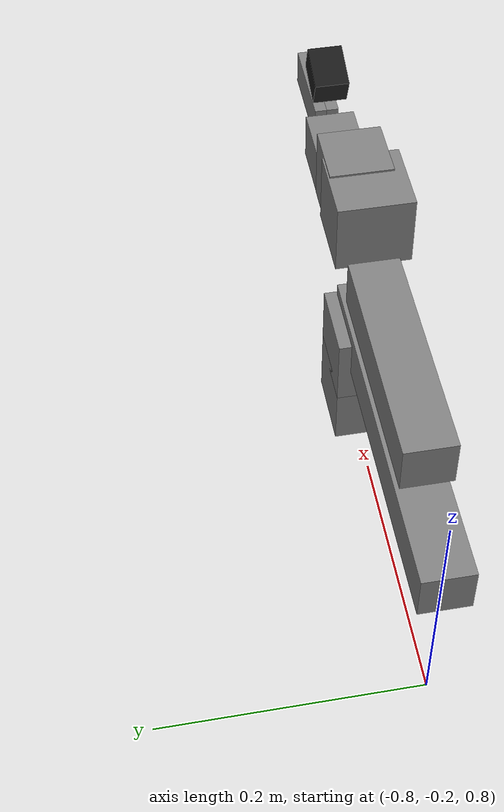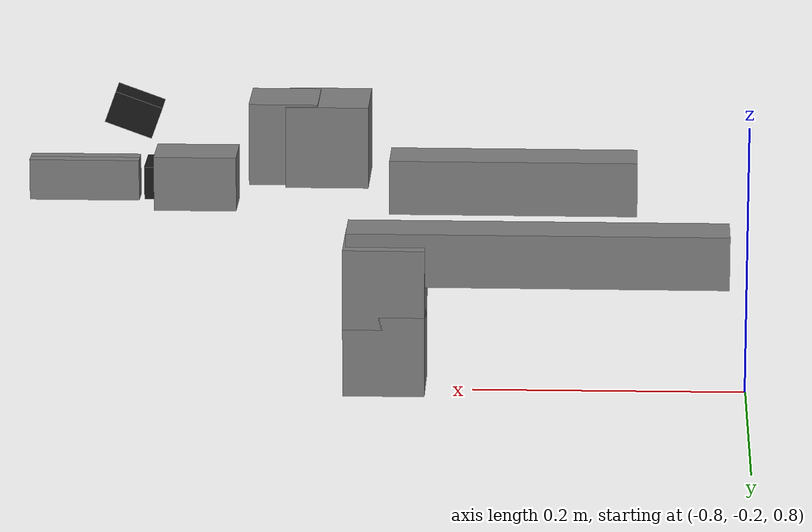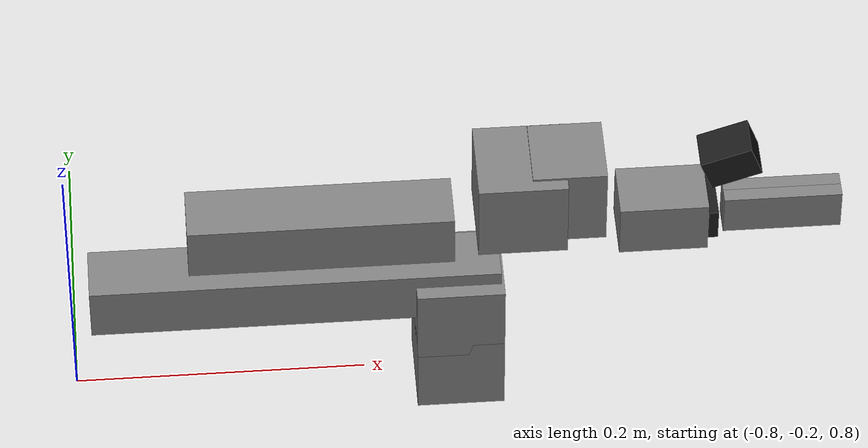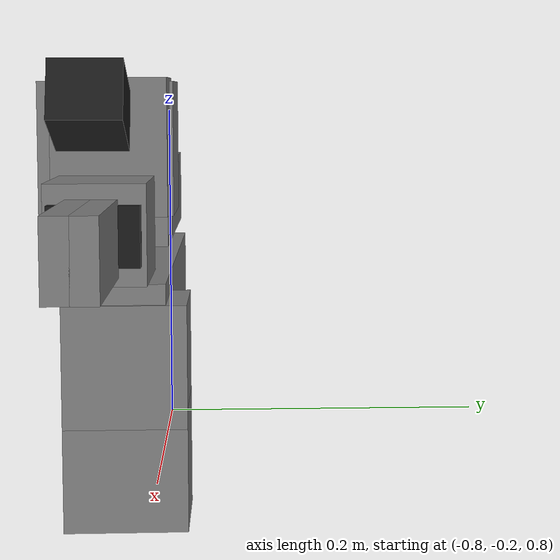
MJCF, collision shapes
<mujoco model="arx5_robot_alignment">
  <compiler angle="radian" autolimits="true" meshdir="../../source/uwlab_assets/uwlab_assets/robots/arx5/assets"/>

  <option timestep="0.008333333333333333" gravity="0 0 -9.81" integrator="implicitfast"/>

  <asset>
    <mesh name="base_link_mesh" file="meshes/base_link.obj"/>
    <mesh name="link1_mesh" file="meshes/link1.obj"/>
    <mesh name="link2_mesh" file="meshes/link2.obj"/>
    <mesh name="link3_mesh" file="meshes/link3.obj"/>
    <mesh name="link4_mesh" file="meshes/link4.obj"/>
    <mesh name="link5_mesh" file="meshes/link5.obj"/>
    <mesh name="link6_mesh" file="meshes/link6.obj"/>
    <mesh name="link7_mesh" file="meshes/link7.obj"/>
    <mesh name="link8_mesh" file="meshes/link8.obj"/>
    <material name="arx_black" rgba="0 0 0 1"/>
    <material name="arx_white" rgba="1 1 1 1"/>
    <material name="camera_mat" rgba="0.1 0.1 0.1 1"/>
    <material name="grasp_site_mat" rgba="0 0.8 1 0.7"/>
  </asset>

  <default>
    <joint damping="0.01" armature="0.01"/>
    <geom type="mesh" contype="1" conaffinity="1" friction="1 0.005 0.0001"/>
  </default>

  <worldbody>
    <!-- Root pose is the current Isaac deploy/data-collection robot base pose. -->
    <body name="arx5" pos="-0.535 -0.21 0.8" quat="1.0 0.0 0.0 0.0" gravcomp="1">
      <inertial pos="-3.0001e-05 3.0589e-05 0.027324" mass="0.43995" diaginertia="0.00017 0.00017 0.00016"/>
      <geom name="base_link_visual" type="mesh" mesh="base_link_mesh" material="arx_black" contype="0" conaffinity="0"/>
      <geom name="base_link_collision" type="box" pos="0.0 0.0 0.03" size="0.03 0.03 0.03" contype="0" conaffinity="0"/>

      <body name="link1" pos="0.0 0.0 0.0605" gravcomp="1">
        <joint name="joint1" type="hinge" axis="0.0 0.0 1.0" range="-10.0 10.0"/>
        <inertial pos="0.0054231 -0.0080289 0.017086" mass="0.066982" diaginertia="0.00008 0.00003 0.00008"/>
        <geom name="link1_visual" type="mesh" mesh="link1_mesh" material="arx_black" contype="0" conaffinity="0"/>
        <geom name="link1_collision" type="box" pos="0.0 0.0 0.02" size="0.03 0.03 0.03" contype="0" conaffinity="0"/>

        <body name="link2" pos="0.02 0.0 0.04" gravcomp="1">
          <joint name="joint2" type="hinge" axis="0.0 1.0 0.0" range="-10.0 10.0"/>
          <inertial pos="-0.13237 0.0020852 0.00010549" mass="1.0795" diaginertia="0.00051 0.01599 0.01605"/>
          <geom name="link2_visual" type="mesh" mesh="link2_mesh" material="arx_black" contype="0" conaffinity="0"/>
          <geom name="link2_collision" type="box" pos="-0.132 0.0 0.0" size="0.14 0.02 0.02" contype="0" conaffinity="0"/>

          <body name="link3" pos="-0.264 0.0 0.0" euler="3.1416 0 0" gravcomp="1">
            <joint name="joint3" type="hinge" axis="0.0 1.0 0.0" range="-10.0 10.0"/>
            <inertial pos="0.18531 0.00068376 -0.051638" mass="0.54534" diaginertia="0.00036 0.00423 0.00420"/>
            <geom name="link3_visual" type="mesh" mesh="link3_mesh" material="arx_white" contype="0" conaffinity="0"/>
            <geom name="link3_collision" type="box" pos="0.15 0.0 -0.055" quat="0.7071068 0 0.7071068 0" size="0.02 0.02 0.09" contype="0" conaffinity="0"/>

            <body name="link4" pos="0.245 0.0 -0.056" gravcomp="1">
              <joint name="joint4" type="hinge" axis="0.0 1.0 0.0" range="-10.0 10.0"/>
              <inertial pos="0.040231 0.0044807 -0.035335" mass="0.11714" diaginertia="0.00019 0.00023 0.00014"/>
              <geom name="link4_visual" type="mesh" mesh="link4_mesh" material="arx_black" contype="0" conaffinity="0"/>
              <geom name="link4_collision" type="box" pos="0.04 0.004 -0.03" size="0.03 0.03 0.03" contype="0" conaffinity="0"/>

              <body name="link5" pos="0.06775 0.0005 -0.0865" gravcomp="1">
                <joint name="joint5" type="hinge" axis="0.0 0.0 1.0" range="-10.0 10.0"/>
                <inertial pos="0.003612 -1.5455e-05 0.055214" mass="0.63488" diaginertia="0.00083 0.00082 0.00026"/>
                <geom name="link5_visual" type="mesh" mesh="link5_mesh" material="arx_black" contype="0" conaffinity="0"/>
                <geom name="link5_collision" type="box" pos="0.004 0.0 0.055" size="0.025 0.025 0.03" contype="0" conaffinity="0"/>

                <body name="link6" pos="0.02895 0.0 0.0865" euler="-3.1416 0 0" gravcomp="1">
                  <joint name="joint6" type="hinge" axis="1.0 0.0 0.0" range="-1.5708 1.5708"/>
                  <inertial pos="0.041697 2.4368e-05 0.00014464" mass="0.44089" diaginertia="0.00038 0.00028 0.00050"/>
                  <geom name="link6_visual" type="mesh" mesh="link6_mesh" material="arx_black" contype="0" conaffinity="0"/>
                  <geom name="link6_collision" type="box" pos="0.04 0.0 0.0" size="0.03 0.02 0.02" contype="0" conaffinity="0"/>
                  <site name="grasp_point" pos="0.145 0.0 0.0" size="0.006" material="grasp_site_mat"/>

                  <body name="camera_base" pos="0.057 0.0 0.0" euler="0 0 -3.1416" gravcomp="1">
                    <geom name="camera_base_visual" type="box" size="0.02 0.018 0.012" material="camera_mat" contype="0" conaffinity="0"/>
                    <body name="camera" pos="-0.0275 0.0 0.05" euler="0 0.3491 3.141592653589793" gravcomp="1">
                      <geom name="camera_visual" type="box" size="0.018 0.014 0.012" material="camera_mat" contype="0" conaffinity="0"/>
                      <camera name="wrist_camera" mode="fixed" pos="0.0 0.0 0.0" quat="1.0 0.0 0.0 0.0" fovy="42.47"/>
                    </body>
                  </body>

                  <body name="link7" pos="0.08657 0.024896 -0.0002436" gravcomp="1">
                    <joint name="joint7" type="slide" axis="0.0 1.0 0.0" range="0.0 0.044"/>
                    <inertial pos="-0.00035522 -0.007827 -0.0029883" mass="0.064798" diaginertia="0.00002 0.00003 0.00003"/>
                    <geom name="link7_visual" type="mesh" mesh="link7_mesh" material="arx_black" contype="0" conaffinity="0"/>
                    <geom name="link7_collision" type="box" pos="0.035 -0.02 0.0" size="0.04 0.005 0.015" contype="1" conaffinity="2" friction="2.0 0.005 0.0001" solimp="0.95 0.99 0.001" solref="0.01 1"/>
                  </body>

                  <body name="link8" pos="0.08657 -0.0249 -0.00024366" gravcomp="1">
                    <joint name="joint8" type="slide" axis="0.0 -1.0 0.0" range="0.0 0.044"/>
                    <inertial pos="-0.00035522 0.0078277 0.0024201" mass="0.064798" diaginertia="0.00002 0.00003 0.00003"/>
                    <geom name="link8_visual" type="mesh" mesh="link8_mesh" material="arx_black" contype="0" conaffinity="0"/>
                    <geom name="link8_collision" type="box" pos="0.035 0.02 0.0" size="0.04 0.005 0.015" contype="1" conaffinity="2" friction="2.0 0.005 0.0001" solimp="0.95 0.99 0.001" solref="0.01 1"/>
                  </body>
                </body>
              </body>
            </body>
          </body>
        </body>
      </body>
    </body>
  </worldbody>

  <keyframe>
    <key name="isaac_default" qpos="0.0 1.0 1.0 0.0 0.0 0.0 0.02 0.02"/>
  </keyframe>

  <actuator>
    <motor name="joint1_torque" joint="joint1" ctrlrange="-50.0 50.0"/>
    <motor name="joint2_torque" joint="joint2" ctrlrange="-50.0 50.0"/>
    <motor name="joint3_torque" joint="joint3" ctrlrange="-50.0 50.0"/>
    <motor name="joint4_torque" joint="joint4" ctrlrange="-50.0 50.0"/>
    <motor name="joint5_torque" joint="joint5" ctrlrange="-50.0 50.0"/>
    <motor name="joint6_torque" joint="joint6" ctrlrange="-50.0 50.0"/>
    <position name="joint7_position" joint="joint7" ctrlrange="0.002 0.044" kp="1000.0" kv="50.0"/>
    <position name="joint8_position" joint="joint8" ctrlrange="0.002 0.044" kp="1000.0" kv="50.0"/>
  </actuator>
</mujoco>
